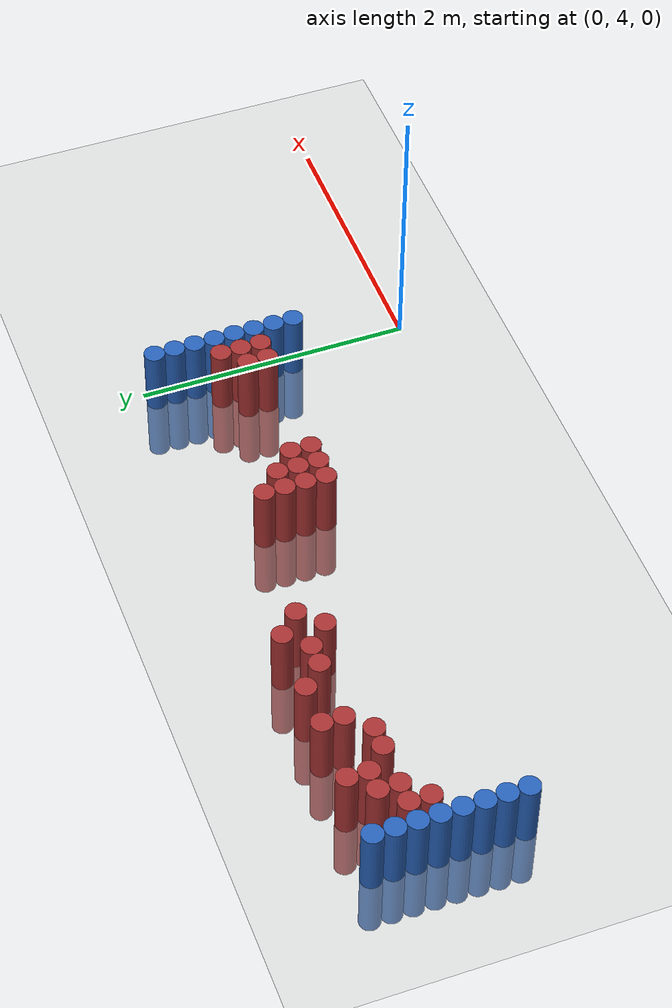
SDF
<sdf version="1.6">
 <world name="default">
  <model name="ground_plane">
   <static>1</static>
   <link name="link">
    <collision name="collision">
     <geometry><plane><normal>0 0 1</normal><size>100 100</size></plane></geometry>
     <surface><friction><ode><mu>100</mu><mu2>50</mu2></ode></friction></surface>
    </collision>
    <visual name="visual">
     <cast_shadows>0</cast_shadows>
     <geometry><plane><normal>0 0 1</normal><size>100 100</size></plane></geometry>
     <material>
      <script><uri>file://media/materials/scripts/gazebo.material</uri><name>Gazebo/Grey</name></script>
     </material>
    </visual>
   </link>
  </model>
  <model name="unit_cylinder_92">
   <static>1</static>
   <pose>-0.075000 4.875000 0.000000 0.000000 0.000000 0.000000</pose>
   <link name="link">
    <inertial>
     <mass>1</mass>
     <inertia><ixx>0.145833</ixx><ixy>0</ixy><ixz>0</ixz><iyy>0.145833</iyy><iyz>0</iyz><izz>0.125</izz></inertia>
    </inertial>
    <collision name="collision">
     <geometry><cylinder><radius>0.075000</radius><length>1</length></cylinder></geometry>
    </collision>
    <visual name="visual">
     <geometry><cylinder><radius>0.075000</radius><length>1</length></cylinder></geometry>
     <material>
      <ambient>0.152000 0.379000 0.720000 1</ambient>
      <diffuse>0.152000 0.379000 0.720000 1</diffuse>
     </material>
     <material>
      <script><name>Gazebo/Grey</name><uri>file://media/materials/scripts/gazebo.material</uri></script>
     </material>
    </visual>
   </link>
  </model>
  <model name="unit_cylinder_93">
   <static>1</static>
   <pose>-4.425000 4.875000 0.000000 0.000000 0.000000 0.000000</pose>
   <link name="link">
    <inertial>
     <mass>1</mass>
     <inertia><ixx>0.145833</ixx><ixy>0</ixy><ixz>0</ixz><iyy>0.145833</iyy><iyz>0</iyz><izz>0.125</izz></inertia>
    </inertial>
    <collision name="collision">
     <geometry><cylinder><radius>0.075000</radius><length>1</length></cylinder></geometry>
    </collision>
    <visual name="visual">
     <geometry><cylinder><radius>0.075000</radius><length>1</length></cylinder></geometry>
     <material>
      <ambient>0.152000 0.379000 0.720000 1</ambient>
      <diffuse>0.152000 0.379000 0.720000 1</diffuse>
     </material>
     <material>
      <script><name>Gazebo/Grey</name><uri>file://media/materials/scripts/gazebo.material</uri></script>
     </material>
    </visual>
   </link>
  </model>
  <model name="unit_cylinder_94">
   <static>1</static>
   <pose>-0.075000 5.025000 0.000000 0.000000 0.000000 0.000000</pose>
   <link name="link">
    <inertial>
     <mass>1</mass>
     <inertia><ixx>0.145833</ixx><ixy>0</ixy><ixz>0</ixz><iyy>0.145833</iyy><iyz>0</iyz><izz>0.125</izz></inertia>
    </inertial>
    <collision name="collision">
     <geometry><cylinder><radius>0.075000</radius><length>1</length></cylinder></geometry>
    </collision>
    <visual name="visual">
     <geometry><cylinder><radius>0.075000</radius><length>1</length></cylinder></geometry>
     <material>
      <ambient>0.152000 0.379000 0.720000 1</ambient>
      <diffuse>0.152000 0.379000 0.720000 1</diffuse>
     </material>
     <material>
      <script><name>Gazebo/Grey</name><uri>file://media/materials/scripts/gazebo.material</uri></script>
     </material>
    </visual>
   </link>
  </model>
  <model name="unit_cylinder_95">
   <static>1</static>
   <pose>-4.425000 5.025000 0.000000 0.000000 0.000000 0.000000</pose>
   <link name="link">
    <inertial>
     <mass>1</mass>
     <inertia><ixx>0.145833</ixx><ixy>0</ixy><ixz>0</ixz><iyy>0.145833</iyy><iyz>0</iyz><izz>0.125</izz></inertia>
    </inertial>
    <collision name="collision">
     <geometry><cylinder><radius>0.075000</radius><length>1</length></cylinder></geometry>
    </collision>
    <visual name="visual">
     <geometry><cylinder><radius>0.075000</radius><length>1</length></cylinder></geometry>
     <material>
      <ambient>0.152000 0.379000 0.720000 1</ambient>
      <diffuse>0.152000 0.379000 0.720000 1</diffuse>
     </material>
     <material>
      <script><name>Gazebo/Grey</name><uri>file://media/materials/scripts/gazebo.material</uri></script>
     </material>
    </visual>
   </link>
  </model>
  <model name="unit_cylinder_96">
   <static>1</static>
   <pose>-4.425000 5.175000 0.000000 0.000000 0.000000 0.000000</pose>
   <link name="link">
    <inertial>
     <mass>1</mass>
     <inertia><ixx>0.145833</ixx><ixy>0</ixy><ixz>0</ixz><iyy>0.145833</iyy><iyz>0</iyz><izz>0.125</izz></inertia>
    </inertial>
    <collision name="collision">
     <geometry><cylinder><radius>0.075000</radius><length>1</length></cylinder></geometry>
    </collision>
    <visual name="visual">
     <geometry><cylinder><radius>0.075000</radius><length>1</length></cylinder></geometry>
     <material>
      <ambient>0.152000 0.379000 0.720000 1</ambient>
      <diffuse>0.152000 0.379000 0.720000 1</diffuse>
     </material>
     <material>
      <script><name>Gazebo/Grey</name><uri>file://media/materials/scripts/gazebo.material</uri></script>
     </material>
    </visual>
   </link>
  </model>
  <model name="unit_cylinder_97">
   <static>1</static>
   <pose>-4.425000 5.325000 0.000000 0.000000 0.000000 0.000000</pose>
   <link name="link">
    <inertial>
     <mass>1</mass>
     <inertia><ixx>0.145833</ixx><ixy>0</ixy><ixz>0</ixz><iyy>0.145833</iyy><iyz>0</iyz><izz>0.125</izz></inertia>
    </inertial>
    <collision name="collision">
     <geometry><cylinder><radius>0.075000</radius><length>1</length></cylinder></geometry>
    </collision>
    <visual name="visual">
     <geometry><cylinder><radius>0.075000</radius><length>1</length></cylinder></geometry>
     <material>
      <ambient>0.152000 0.379000 0.720000 1</ambient>
      <diffuse>0.152000 0.379000 0.720000 1</diffuse>
     </material>
     <material>
      <script><name>Gazebo/Grey</name><uri>file://media/materials/scripts/gazebo.material</uri></script>
     </material>
    </visual>
   </link>
  </model>
  <model name="unit_cylinder_98">
   <static>1</static>
   <pose>-4.425000 5.475000 0.000000 0.000000 0.000000 0.000000</pose>
   <link name="link">
    <inertial>
     <mass>1</mass>
     <inertia><ixx>0.145833</ixx><ixy>0</ixy><ixz>0</ixz><iyy>0.145833</iyy><iyz>0</iyz><izz>0.125</izz></inertia>
    </inertial>
    <collision name="collision">
     <geometry><cylinder><radius>0.075000</radius><length>1</length></cylinder></geometry>
    </collision>
    <visual name="visual">
     <geometry><cylinder><radius>0.075000</radius><length>1</length></cylinder></geometry>
     <material>
      <ambient>0.152000 0.379000 0.720000 1</ambient>
      <diffuse>0.152000 0.379000 0.720000 1</diffuse>
     </material>
     <material>
      <script><name>Gazebo/Grey</name><uri>file://media/materials/scripts/gazebo.material</uri></script>
     </material>
    </visual>
   </link>
  </model>
  <model name="unit_cylinder_99">
   <static>1</static>
   <pose>-4.425000 5.625000 0.000000 0.000000 0.000000 0.000000</pose>
   <link name="link">
    <inertial>
     <mass>1</mass>
     <inertia><ixx>0.145833</ixx><ixy>0</ixy><ixz>0</ixz><iyy>0.145833</iyy><iyz>0</iyz><izz>0.125</izz></inertia>
    </inertial>
    <collision name="collision">
     <geometry><cylinder><radius>0.075000</radius><length>1</length></cylinder></geometry>
    </collision>
    <visual name="visual">
     <geometry><cylinder><radius>0.075000</radius><length>1</length></cylinder></geometry>
     <material>
      <ambient>0.152000 0.379000 0.720000 1</ambient>
      <diffuse>0.152000 0.379000 0.720000 1</diffuse>
     </material>
     <material>
      <script><name>Gazebo/Grey</name><uri>file://media/materials/scripts/gazebo.material</uri></script>
     </material>
    </visual>
   </link>
  </model>
  <model name="unit_cylinder_100">
   <static>1</static>
   <pose>-4.425000 5.775000 0.000000 0.000000 0.000000 0.000000</pose>
   <link name="link">
    <inertial>
     <mass>1</mass>
     <inertia><ixx>0.145833</ixx><ixy>0</ixy><ixz>0</ixz><iyy>0.145833</iyy><iyz>0</iyz><izz>0.125</izz></inertia>
    </inertial>
    <collision name="collision">
     <geometry><cylinder><radius>0.075000</radius><length>1</length></cylinder></geometry>
    </collision>
    <visual name="visual">
     <geometry><cylinder><radius>0.075000</radius><length>1</length></cylinder></geometry>
     <material>
      <ambient>0.152000 0.379000 0.720000 1</ambient>
      <diffuse>0.152000 0.379000 0.720000 1</diffuse>
     </material>
     <material>
      <script><name>Gazebo/Grey</name><uri>file://media/materials/scripts/gazebo.material</uri></script>
     </material>
    </visual>
   </link>
  </model>
  <model name="unit_cylinder_101">
   <static>1</static>
   <pose>-4.425000 5.925000 0.000000 0.000000 0.000000 0.000000</pose>
   <link name="link">
    <inertial>
     <mass>1</mass>
     <inertia><ixx>0.145833</ixx><ixy>0</ixy><ixz>0</ixz><iyy>0.145833</iyy><iyz>0</iyz><izz>0.125</izz></inertia>
    </inertial>
    <collision name="collision">
     <geometry><cylinder><radius>0.075000</radius><length>1</length></cylinder></geometry>
    </collision>
    <visual name="visual">
     <geometry><cylinder><radius>0.075000</radius><length>1</length></cylinder></geometry>
     <material>
      <ambient>0.152000 0.379000 0.720000 1</ambient>
      <diffuse>0.152000 0.379000 0.720000 1</diffuse>
     </material>
     <material>
      <script><name>Gazebo/Grey</name><uri>file://media/materials/scripts/gazebo.material</uri></script>
     </material>
    </visual>
   </link>
  </model>
  <model name="unit_cylinder_126">
   <static>1</static>
   <pose>-4.275000 5.475000 0.000000 0.000000 0.000000 0.000000</pose>
   <link name="link">
    <inertial>
     <mass>1</mass>
     <inertia><ixx>0.145833</ixx><ixy>0</ixy><ixz>0</ixz><iyy>0.145833</iyy><iyz>0</iyz><izz>0.125</izz></inertia>
    </inertial>
    <collision name="collision">
     <geometry><cylinder><radius>0.075000</radius><length>1</length></cylinder></geometry>
    </collision>
    <visual name="visual">
     <geometry><cylinder><radius>0.075000</radius><length>1</length></cylinder></geometry>
     <material>
      <ambient>0.648000 0.192000 0.192000 1</ambient>
      <diffuse>0.648000 0.192000 0.192000 1</diffuse>
     </material>
     <material>
      <script><name>Gazebo/Grey</name><uri>file://media/materials/scripts/gazebo.material</uri></script>
     </material>
    </visual>
   </link>
  </model>
  <model name="unit_cylinder_127">
   <static>1</static>
   <pose>-4.275000 5.625000 0.000000 0.000000 0.000000 0.000000</pose>
   <link name="link">
    <inertial>
     <mass>1</mass>
     <inertia><ixx>0.145833</ixx><ixy>0</ixy><ixz>0</ixz><iyy>0.145833</iyy><iyz>0</iyz><izz>0.125</izz></inertia>
    </inertial>
    <collision name="collision">
     <geometry><cylinder><radius>0.075000</radius><length>1</length></cylinder></geometry>
    </collision>
    <visual name="visual">
     <geometry><cylinder><radius>0.075000</radius><length>1</length></cylinder></geometry>
     <material>
      <ambient>0.648000 0.192000 0.192000 1</ambient>
      <diffuse>0.648000 0.192000 0.192000 1</diffuse>
     </material>
     <material>
      <script><name>Gazebo/Grey</name><uri>file://media/materials/scripts/gazebo.material</uri></script>
     </material>
    </visual>
   </link>
  </model>
  <model name="unit_cylinder_137">
   <static>1</static>
   <pose>-4.125000 5.625000 0.000000 0.000000 0.000000 0.000000</pose>
   <link name="link">
    <inertial>
     <mass>1</mass>
     <inertia><ixx>0.145833</ixx><ixy>0</ixy><ixz>0</ixz><iyy>0.145833</iyy><iyz>0</iyz><izz>0.125</izz></inertia>
    </inertial>
    <collision name="collision">
     <geometry><cylinder><radius>0.075000</radius><length>1</length></cylinder></geometry>
    </collision>
    <visual name="visual">
     <geometry><cylinder><radius>0.075000</radius><length>1</length></cylinder></geometry>
     <material>
      <ambient>0.648000 0.192000 0.192000 1</ambient>
      <diffuse>0.648000 0.192000 0.192000 1</diffuse>
     </material>
     <material>
      <script><name>Gazebo/Grey</name><uri>file://media/materials/scripts/gazebo.material</uri></script>
     </material>
    </visual>
   </link>
  </model>
  <model name="unit_cylinder_138">
   <static>1</static>
   <pose>-4.125000 5.775000 0.000000 0.000000 0.000000 0.000000</pose>
   <link name="link">
    <inertial>
     <mass>1</mass>
     <inertia><ixx>0.145833</ixx><ixy>0</ixy><ixz>0</ixz><iyy>0.145833</iyy><iyz>0</iyz><izz>0.125</izz></inertia>
    </inertial>
    <collision name="collision">
     <geometry><cylinder><radius>0.075000</radius><length>1</length></cylinder></geometry>
    </collision>
    <visual name="visual">
     <geometry><cylinder><radius>0.075000</radius><length>1</length></cylinder></geometry>
     <material>
      <ambient>0.648000 0.192000 0.192000 1</ambient>
      <diffuse>0.648000 0.192000 0.192000 1</diffuse>
     </material>
     <material>
      <script><name>Gazebo/Grey</name><uri>file://media/materials/scripts/gazebo.material</uri></script>
     </material>
    </visual>
   </link>
  </model>
  <model name="unit_cylinder_143">
   <static>1</static>
   <pose>-3.975000 5.775000 0.000000 0.000000 0.000000 0.000000</pose>
   <link name="link">
    <inertial>
     <mass>1</mass>
     <inertia><ixx>0.145833</ixx><ixy>0</ixy><ixz>0</ixz><iyy>0.145833</iyy><iyz>0</iyz><izz>0.125</izz></inertia>
    </inertial>
    <collision name="collision">
     <geometry><cylinder><radius>0.075000</radius><length>1</length></cylinder></geometry>
    </collision>
    <visual name="visual">
     <geometry><cylinder><radius>0.075000</radius><length>1</length></cylinder></geometry>
     <material>
      <ambient>0.648000 0.192000 0.192000 1</ambient>
      <diffuse>0.648000 0.192000 0.192000 1</diffuse>
     </material>
     <material>
      <script><name>Gazebo/Grey</name><uri>file://media/materials/scripts/gazebo.material</uri></script>
     </material>
    </visual>
   </link>
  </model>
  <model name="unit_cylinder_144">
   <static>1</static>
   <pose>-3.975000 5.925000 0.000000 0.000000 0.000000 0.000000</pose>
   <link name="link">
    <inertial>
     <mass>1</mass>
     <inertia><ixx>0.145833</ixx><ixy>0</ixy><ixz>0</ixz><iyy>0.145833</iyy><iyz>0</iyz><izz>0.125</izz></inertia>
    </inertial>
    <collision name="collision">
     <geometry><cylinder><radius>0.075000</radius><length>1</length></cylinder></geometry>
    </collision>
    <visual name="visual">
     <geometry><cylinder><radius>0.075000</radius><length>1</length></cylinder></geometry>
     <material>
      <ambient>0.648000 0.192000 0.192000 1</ambient>
      <diffuse>0.648000 0.192000 0.192000 1</diffuse>
     </material>
     <material>
      <script><name>Gazebo/Grey</name><uri>file://media/materials/scripts/gazebo.material</uri></script>
     </material>
    </visual>
   </link>
  </model>
  <model name="unit_cylinder_149">
   <static>1</static>
   <pose>-3.825000 5.625000 0.000000 0.000000 0.000000 0.000000</pose>
   <link name="link">
    <inertial>
     <mass>1</mass>
     <inertia><ixx>0.145833</ixx><ixy>0</ixy><ixz>0</ixz><iyy>0.145833</iyy><iyz>0</iyz><izz>0.125</izz></inertia>
    </inertial>
    <collision name="collision">
     <geometry><cylinder><radius>0.075000</radius><length>1</length></cylinder></geometry>
    </collision>
    <visual name="visual">
     <geometry><cylinder><radius>0.075000</radius><length>1</length></cylinder></geometry>
     <material>
      <ambient>0.648000 0.192000 0.192000 1</ambient>
      <diffuse>0.648000 0.192000 0.192000 1</diffuse>
     </material>
     <material>
      <script><name>Gazebo/Grey</name><uri>file://media/materials/scripts/gazebo.material</uri></script>
     </material>
    </visual>
   </link>
  </model>
  <model name="unit_cylinder_151">
   <static>1</static>
   <pose>-3.675000 5.625000 0.000000 0.000000 0.000000 0.000000</pose>
   <link name="link">
    <inertial>
     <mass>1</mass>
     <inertia><ixx>0.145833</ixx><ixy>0</ixy><ixz>0</ixz><iyy>0.145833</iyy><iyz>0</iyz><izz>0.125</izz></inertia>
    </inertial>
    <collision name="collision">
     <geometry><cylinder><radius>0.075000</radius><length>1</length></cylinder></geometry>
    </collision>
    <visual name="visual">
     <geometry><cylinder><radius>0.075000</radius><length>1</length></cylinder></geometry>
     <material>
      <ambient>0.648000 0.192000 0.192000 1</ambient>
      <diffuse>0.648000 0.192000 0.192000 1</diffuse>
     </material>
     <material>
      <script><name>Gazebo/Grey</name><uri>file://media/materials/scripts/gazebo.material</uri></script>
     </material>
    </visual>
   </link>
  </model>
  <model name="unit_cylinder_155">
   <static>1</static>
   <pose>-3.525000 5.775000 0.000000 0.000000 0.000000 0.000000</pose>
   <link name="link">
    <inertial>
     <mass>1</mass>
     <inertia><ixx>0.145833</ixx><ixy>0</ixy><ixz>0</ixz><iyy>0.145833</iyy><iyz>0</iyz><izz>0.125</izz></inertia>
    </inertial>
    <collision name="collision">
     <geometry><cylinder><radius>0.075000</radius><length>1</length></cylinder></geometry>
    </collision>
    <visual name="visual">
     <geometry><cylinder><radius>0.075000</radius><length>1</length></cylinder></geometry>
     <material>
      <ambient>0.648000 0.192000 0.192000 1</ambient>
      <diffuse>0.648000 0.192000 0.192000 1</diffuse>
     </material>
     <material>
      <script><name>Gazebo/Grey</name><uri>file://media/materials/scripts/gazebo.material</uri></script>
     </material>
    </visual>
   </link>
  </model>
  <model name="unit_cylinder_156">
   <static>1</static>
   <pose>-3.525000 5.925000 0.000000 0.000000 0.000000 0.000000</pose>
   <link name="link">
    <inertial>
     <mass>1</mass>
     <inertia><ixx>0.145833</ixx><ixy>0</ixy><ixz>0</ixz><iyy>0.145833</iyy><iyz>0</iyz><izz>0.125</izz></inertia>
    </inertial>
    <collision name="collision">
     <geometry><cylinder><radius>0.075000</radius><length>1</length></cylinder></geometry>
    </collision>
    <visual name="visual">
     <geometry><cylinder><radius>0.075000</radius><length>1</length></cylinder></geometry>
     <material>
      <ambient>0.648000 0.192000 0.192000 1</ambient>
      <diffuse>0.648000 0.192000 0.192000 1</diffuse>
     </material>
     <material>
      <script><name>Gazebo/Grey</name><uri>file://media/materials/scripts/gazebo.material</uri></script>
     </material>
    </visual>
   </link>
  </model>
  <model name="unit_cylinder_164">
   <static>1</static>
   <pose>-3.225000 5.925000 0.000000 0.000000 0.000000 0.000000</pose>
   <link name="link">
    <inertial>
     <mass>1</mass>
     <inertia><ixx>0.145833</ixx><ixy>0</ixy><ixz>0</ixz><iyy>0.145833</iyy><iyz>0</iyz><izz>0.125</izz></inertia>
    </inertial>
    <collision name="collision">
     <geometry><cylinder><radius>0.075000</radius><length>1</length></cylinder></geometry>
    </collision>
    <visual name="visual">
     <geometry><cylinder><radius>0.075000</radius><length>1</length></cylinder></geometry>
     <material>
      <ambient>0.648000 0.192000 0.192000 1</ambient>
      <diffuse>0.648000 0.192000 0.192000 1</diffuse>
     </material>
     <material>
      <script><name>Gazebo/Grey</name><uri>file://media/materials/scripts/gazebo.material</uri></script>
     </material>
    </visual>
   </link>
  </model>
  <model name="unit_cylinder_166">
   <static>1</static>
   <pose>-3.075000 5.775000 0.000000 0.000000 0.000000 0.000000</pose>
   <link name="link">
    <inertial>
     <mass>1</mass>
     <inertia><ixx>0.145833</ixx><ixy>0</ixy><ixz>0</ixz><iyy>0.145833</iyy><iyz>0</iyz><izz>0.125</izz></inertia>
    </inertial>
    <collision name="collision">
     <geometry><cylinder><radius>0.075000</radius><length>1</length></cylinder></geometry>
    </collision>
    <visual name="visual">
     <geometry><cylinder><radius>0.075000</radius><length>1</length></cylinder></geometry>
     <material>
      <ambient>0.648000 0.192000 0.192000 1</ambient>
      <diffuse>0.648000 0.192000 0.192000 1</diffuse>
     </material>
     <material>
      <script><name>Gazebo/Grey</name><uri>file://media/materials/scripts/gazebo.material</uri></script>
     </material>
    </visual>
   </link>
  </model>
  <model name="unit_cylinder_167">
   <static>1</static>
   <pose>-2.925000 5.775000 0.000000 0.000000 0.000000 0.000000</pose>
   <link name="link">
    <inertial>
     <mass>1</mass>
     <inertia><ixx>0.145833</ixx><ixy>0</ixy><ixz>0</ixz><iyy>0.145833</iyy><iyz>0</iyz><izz>0.125</izz></inertia>
    </inertial>
    <collision name="collision">
     <geometry><cylinder><radius>0.075000</radius><length>1</length></cylinder></geometry>
    </collision>
    <visual name="visual">
     <geometry><cylinder><radius>0.075000</radius><length>1</length></cylinder></geometry>
     <material>
      <ambient>0.648000 0.192000 0.192000 1</ambient>
      <diffuse>0.648000 0.192000 0.192000 1</diffuse>
     </material>
     <material>
      <script><name>Gazebo/Grey</name><uri>file://media/materials/scripts/gazebo.material</uri></script>
     </material>
    </visual>
   </link>
  </model>
  <model name="unit_cylinder_168">
   <static>1</static>
   <pose>-2.775000 5.625000 0.000000 0.000000 0.000000 0.000000</pose>
   <link name="link">
    <inertial>
     <mass>1</mass>
     <inertia><ixx>0.145833</ixx><ixy>0</ixy><ixz>0</ixz><iyy>0.145833</iyy><iyz>0</iyz><izz>0.125</izz></inertia>
    </inertial>
    <collision name="collision">
     <geometry><cylinder><radius>0.075000</radius><length>1</length></cylinder></geometry>
    </collision>
    <visual name="visual">
     <geometry><cylinder><radius>0.075000</radius><length>1</length></cylinder></geometry>
     <material>
      <ambient>0.648000 0.192000 0.192000 1</ambient>
      <diffuse>0.648000 0.192000 0.192000 1</diffuse>
     </material>
     <material>
      <script><name>Gazebo/Grey</name><uri>file://media/materials/scripts/gazebo.material</uri></script>
     </material>
    </visual>
   </link>
  </model>
  <model name="unit_cylinder_169">
   <static>1</static>
   <pose>-2.775000 5.925000 0.000000 0.000000 0.000000 0.000000</pose>
   <link name="link">
    <inertial>
     <mass>1</mass>
     <inertia><ixx>0.145833</ixx><ixy>0</ixy><ixz>0</ixz><iyy>0.145833</iyy><iyz>0</iyz><izz>0.125</izz></inertia>
    </inertial>
    <collision name="collision">
     <geometry><cylinder><radius>0.075000</radius><length>1</length></cylinder></geometry>
    </collision>
    <visual name="visual">
     <geometry><cylinder><radius>0.075000</radius><length>1</length></cylinder></geometry>
     <material>
      <ambient>0.648000 0.192000 0.192000 1</ambient>
      <diffuse>0.648000 0.192000 0.192000 1</diffuse>
     </material>
     <material>
      <script><name>Gazebo/Grey</name><uri>file://media/materials/scripts/gazebo.material</uri></script>
     </material>
    </visual>
   </link>
  </model>
  <model name="unit_cylinder_170">
   <static>1</static>
   <pose>-2.625000 5.775000 0.000000 0.000000 0.000000 0.000000</pose>
   <link name="link">
    <inertial>
     <mass>1</mass>
     <inertia><ixx>0.145833</ixx><ixy>0</ixy><ixz>0</ixz><iyy>0.145833</iyy><iyz>0</iyz><izz>0.125</izz></inertia>
    </inertial>
    <collision name="collision">
     <geometry><cylinder><radius>0.075000</radius><length>1</length></cylinder></geometry>
    </collision>
    <visual name="visual">
     <geometry><cylinder><radius>0.075000</radius><length>1</length></cylinder></geometry>
     <material>
      <ambient>0.648000 0.192000 0.192000 1</ambient>
      <diffuse>0.648000 0.192000 0.192000 1</diffuse>
     </material>
     <material>
      <script><name>Gazebo/Grey</name><uri>file://media/materials/scripts/gazebo.material</uri></script>
     </material>
    </visual>
   </link>
  </model>
  <model name="unit_cylinder_178">
   <static>1</static>
   <pose>-1.575000 5.175000 0.000000 0.000000 0.000000 0.000000</pose>
   <link name="link">
    <inertial>
     <mass>1</mass>
     <inertia><ixx>0.145833</ixx><ixy>0</ixy><ixz>0</ixz><iyy>0.145833</iyy><iyz>0</iyz><izz>0.125</izz></inertia>
    </inertial>
    <collision name="collision">
     <geometry><cylinder><radius>0.075000</radius><length>1</length></cylinder></geometry>
    </collision>
    <visual name="visual">
     <geometry><cylinder><radius>0.075000</radius><length>1</length></cylinder></geometry>
     <material>
      <ambient>0.648000 0.192000 0.192000 1</ambient>
      <diffuse>0.648000 0.192000 0.192000 1</diffuse>
     </material>
     <material>
      <script><name>Gazebo/Grey</name><uri>file://media/materials/scripts/gazebo.material</uri></script>
     </material>
    </visual>
   </link>
  </model>
  <model name="unit_cylinder_179">
   <static>1</static>
   <pose>-1.575000 5.325000 0.000000 0.000000 0.000000 0.000000</pose>
   <link name="link">
    <inertial>
     <mass>1</mass>
     <inertia><ixx>0.145833</ixx><ixy>0</ixy><ixz>0</ixz><iyy>0.145833</iyy><iyz>0</iyz><izz>0.125</izz></inertia>
    </inertial>
    <collision name="collision">
     <geometry><cylinder><radius>0.075000</radius><length>1</length></cylinder></geometry>
    </collision>
    <visual name="visual">
     <geometry><cylinder><radius>0.075000</radius><length>1</length></cylinder></geometry>
     <material>
      <ambient>0.648000 0.192000 0.192000 1</ambient>
      <diffuse>0.648000 0.192000 0.192000 1</diffuse>
     </material>
     <material>
      <script><name>Gazebo/Grey</name><uri>file://media/materials/scripts/gazebo.material</uri></script>
     </material>
    </visual>
   </link>
  </model>
  <model name="unit_cylinder_180">
   <static>1</static>
   <pose>-1.575000 5.475000 0.000000 0.000000 0.000000 0.000000</pose>
   <link name="link">
    <inertial>
     <mass>1</mass>
     <inertia><ixx>0.145833</ixx><ixy>0</ixy><ixz>0</ixz><iyy>0.145833</iyy><iyz>0</iyz><izz>0.125</izz></inertia>
    </inertial>
    <collision name="collision">
     <geometry><cylinder><radius>0.075000</radius><length>1</length></cylinder></geometry>
    </collision>
    <visual name="visual">
     <geometry><cylinder><radius>0.075000</radius><length>1</length></cylinder></geometry>
     <material>
      <ambient>0.648000 0.192000 0.192000 1</ambient>
      <diffuse>0.648000 0.192000 0.192000 1</diffuse>
     </material>
     <material>
      <script><name>Gazebo/Grey</name><uri>file://media/materials/scripts/gazebo.material</uri></script>
     </material>
    </visual>
   </link>
  </model>
  <model name="unit_cylinder_181">
   <static>1</static>
   <pose>-1.575000 5.625000 0.000000 0.000000 0.000000 0.000000</pose>
   <link name="link">
    <inertial>
     <mass>1</mass>
     <inertia><ixx>0.145833</ixx><ixy>0</ixy><ixz>0</ixz><iyy>0.145833</iyy><iyz>0</iyz><izz>0.125</izz></inertia>
    </inertial>
    <collision name="collision">
     <geometry><cylinder><radius>0.075000</radius><length>1</length></cylinder></geometry>
    </collision>
    <visual name="visual">
     <geometry><cylinder><radius>0.075000</radius><length>1</length></cylinder></geometry>
     <material>
      <ambient>0.648000 0.192000 0.192000 1</ambient>
      <diffuse>0.648000 0.192000 0.192000 1</diffuse>
     </material>
     <material>
      <script><name>Gazebo/Grey</name><uri>file://media/materials/scripts/gazebo.material</uri></script>
     </material>
    </visual>
   </link>
  </model>
  <model name="unit_cylinder_185">
   <static>1</static>
   <pose>-1.425000 5.175000 0.000000 0.000000 0.000000 0.000000</pose>
   <link name="link">
    <inertial>
     <mass>1</mass>
     <inertia><ixx>0.145833</ixx><ixy>0</ixy><ixz>0</ixz><iyy>0.145833</iyy><iyz>0</iyz><izz>0.125</izz></inertia>
    </inertial>
    <collision name="collision">
     <geometry><cylinder><radius>0.075000</radius><length>1</length></cylinder></geometry>
    </collision>
    <visual name="visual">
     <geometry><cylinder><radius>0.075000</radius><length>1</length></cylinder></geometry>
     <material>
      <ambient>0.648000 0.192000 0.192000 1</ambient>
      <diffuse>0.648000 0.192000 0.192000 1</diffuse>
     </material>
     <material>
      <script><name>Gazebo/Grey</name><uri>file://media/materials/scripts/gazebo.material</uri></script>
     </material>
    </visual>
   </link>
  </model>
  <model name="unit_cylinder_186">
   <static>1</static>
   <pose>-1.425000 5.325000 0.000000 0.000000 0.000000 0.000000</pose>
   <link name="link">
    <inertial>
     <mass>1</mass>
     <inertia><ixx>0.145833</ixx><ixy>0</ixy><ixz>0</ixz><iyy>0.145833</iyy><iyz>0</iyz><izz>0.125</izz></inertia>
    </inertial>
    <collision name="collision">
     <geometry><cylinder><radius>0.075000</radius><length>1</length></cylinder></geometry>
    </collision>
    <visual name="visual">
     <geometry><cylinder><radius>0.075000</radius><length>1</length></cylinder></geometry>
     <material>
      <ambient>0.648000 0.192000 0.192000 1</ambient>
      <diffuse>0.648000 0.192000 0.192000 1</diffuse>
     </material>
     <material>
      <script><name>Gazebo/Grey</name><uri>file://media/materials/scripts/gazebo.material</uri></script>
     </material>
    </visual>
   </link>
  </model>
  <model name="unit_cylinder_187">
   <static>1</static>
   <pose>-1.425000 5.475000 0.000000 0.000000 0.000000 0.000000</pose>
   <link name="link">
    <inertial>
     <mass>1</mass>
     <inertia><ixx>0.145833</ixx><ixy>0</ixy><ixz>0</ixz><iyy>0.145833</iyy><iyz>0</iyz><izz>0.125</izz></inertia>
    </inertial>
    <collision name="collision">
     <geometry><cylinder><radius>0.075000</radius><length>1</length></cylinder></geometry>
    </collision>
    <visual name="visual">
     <geometry><cylinder><radius>0.075000</radius><length>1</length></cylinder></geometry>
     <material>
      <ambient>0.648000 0.192000 0.192000 1</ambient>
      <diffuse>0.648000 0.192000 0.192000 1</diffuse>
     </material>
     <material>
      <script><name>Gazebo/Grey</name><uri>file://media/materials/scripts/gazebo.material</uri></script>
     </material>
    </visual>
   </link>
  </model>
  <model name="unit_cylinder_191">
   <static>1</static>
   <pose>-1.275000 5.175000 0.000000 0.000000 0.000000 0.000000</pose>
   <link name="link">
    <inertial>
     <mass>1</mass>
     <inertia><ixx>0.145833</ixx><ixy>0</ixy><ixz>0</ixz><iyy>0.145833</iyy><iyz>0</iyz><izz>0.125</izz></inertia>
    </inertial>
    <collision name="collision">
     <geometry><cylinder><radius>0.075000</radius><length>1</length></cylinder></geometry>
    </collision>
    <visual name="visual">
     <geometry><cylinder><radius>0.075000</radius><length>1</length></cylinder></geometry>
     <material>
      <ambient>0.648000 0.192000 0.192000 1</ambient>
      <diffuse>0.648000 0.192000 0.192000 1</diffuse>
     </material>
     <material>
      <script><name>Gazebo/Grey</name><uri>file://media/materials/scripts/gazebo.material</uri></script>
     </material>
    </visual>
   </link>
  </model>
  <model name="unit_cylinder_192">
   <static>1</static>
   <pose>-1.275000 5.325000 0.000000 0.000000 0.000000 0.000000</pose>
   <link name="link">
    <inertial>
     <mass>1</mass>
     <inertia><ixx>0.145833</ixx><ixy>0</ixy><ixz>0</ixz><iyy>0.145833</iyy><iyz>0</iyz><izz>0.125</izz></inertia>
    </inertial>
    <collision name="collision">
     <geometry><cylinder><radius>0.075000</radius><length>1</length></cylinder></geometry>
    </collision>
    <visual name="visual">
     <geometry><cylinder><radius>0.075000</radius><length>1</length></cylinder></geometry>
     <material>
      <ambient>0.648000 0.192000 0.192000 1</ambient>
      <diffuse>0.648000 0.192000 0.192000 1</diffuse>
     </material>
     <material>
      <script><name>Gazebo/Grey</name><uri>file://media/materials/scripts/gazebo.material</uri></script>
     </material>
    </visual>
   </link>
  </model>
  <model name="unit_cylinder_219">
   <static>1</static>
   <pose>-0.375000 5.175000 0.000000 0.000000 0.000000 0.000000</pose>
   <link name="link">
    <inertial>
     <mass>1</mass>
     <inertia><ixx>0.145833</ixx><ixy>0</ixy><ixz>0</ixz><iyy>0.145833</iyy><iyz>0</iyz><izz>0.125</izz></inertia>
    </inertial>
    <collision name="collision">
     <geometry><cylinder><radius>0.075000</radius><length>1</length></cylinder></geometry>
    </collision>
    <visual name="visual">
     <geometry><cylinder><radius>0.075000</radius><length>1</length></cylinder></geometry>
     <material>
      <ambient>0.648000 0.192000 0.192000 1</ambient>
      <diffuse>0.648000 0.192000 0.192000 1</diffuse>
     </material>
     <material>
      <script><name>Gazebo/Grey</name><uri>file://media/materials/scripts/gazebo.material</uri></script>
     </material>
    </visual>
   </link>
  </model>
  <model name="unit_cylinder_220">
   <static>1</static>
   <pose>-0.375000 5.325000 0.000000 0.000000 0.000000 0.000000</pose>
   <link name="link">
    <inertial>
     <mass>1</mass>
     <inertia><ixx>0.145833</ixx><ixy>0</ixy><ixz>0</ixz><iyy>0.145833</iyy><iyz>0</iyz><izz>0.125</izz></inertia>
    </inertial>
    <collision name="collision">
     <geometry><cylinder><radius>0.075000</radius><length>1</length></cylinder></geometry>
    </collision>
    <visual name="visual">
     <geometry><cylinder><radius>0.075000</radius><length>1</length></cylinder></geometry>
     <material>
      <ambient>0.648000 0.192000 0.192000 1</ambient>
      <diffuse>0.648000 0.192000 0.192000 1</diffuse>
     </material>
     <material>
      <script><name>Gazebo/Grey</name><uri>file://media/materials/scripts/gazebo.material</uri></script>
     </material>
    </visual>
   </link>
  </model>
  <model name="unit_cylinder_228">
   <static>1</static>
   <pose>-0.225000 5.175000 0.000000 0.000000 0.000000 0.000000</pose>
   <link name="link">
    <inertial>
     <mass>1</mass>
     <inertia><ixx>0.145833</ixx><ixy>0</ixy><ixz>0</ixz><iyy>0.145833</iyy><iyz>0</iyz><izz>0.125</izz></inertia>
    </inertial>
    <collision name="collision">
     <geometry><cylinder><radius>0.075000</radius><length>1</length></cylinder></geometry>
    </collision>
    <visual name="visual">
     <geometry><cylinder><radius>0.075000</radius><length>1</length></cylinder></geometry>
     <material>
      <ambient>0.648000 0.192000 0.192000 1</ambient>
      <diffuse>0.648000 0.192000 0.192000 1</diffuse>
     </material>
     <material>
      <script><name>Gazebo/Grey</name><uri>file://media/materials/scripts/gazebo.material</uri></script>
     </material>
    </visual>
   </link>
  </model>
  <model name="unit_cylinder_229">
   <static>1</static>
   <pose>-0.225000 5.325000 0.000000 0.000000 0.000000 0.000000</pose>
   <link name="link">
    <inertial>
     <mass>1</mass>
     <inertia><ixx>0.145833</ixx><ixy>0</ixy><ixz>0</ixz><iyy>0.145833</iyy><iyz>0</iyz><izz>0.125</izz></inertia>
    </inertial>
    <collision name="collision">
     <geometry><cylinder><radius>0.075000</radius><length>1</length></cylinder></geometry>
    </collision>
    <visual name="visual">
     <geometry><cylinder><radius>0.075000</radius><length>1</length></cylinder></geometry>
     <material>
      <ambient>0.648000 0.192000 0.192000 1</ambient>
      <diffuse>0.648000 0.192000 0.192000 1</diffuse>
     </material>
     <material>
      <script><name>Gazebo/Grey</name><uri>file://media/materials/scripts/gazebo.material</uri></script>
     </material>
    </visual>
   </link>
  </model>
  <model name="unit_cylinder_230">
   <static>1</static>
   <pose>-0.225000 5.475000 0.000000 0.000000 0.000000 0.000000</pose>
   <link name="link">
    <inertial>
     <mass>1</mass>
     <inertia><ixx>0.145833</ixx><ixy>0</ixy><ixz>0</ixz><iyy>0.145833</iyy><iyz>0</iyz><izz>0.125</izz></inertia>
    </inertial>
    <collision name="collision">
     <geometry><cylinder><radius>0.075000</radius><length>1</length></cylinder></geometry>
    </collision>
    <visual name="visual">
     <geometry><cylinder><radius>0.075000</radius><length>1</length></cylinder></geometry>
     <material>
      <ambient>0.648000 0.192000 0.192000 1</ambient>
      <diffuse>0.648000 0.192000 0.192000 1</diffuse>
     </material>
     <material>
      <script><name>Gazebo/Grey</name><uri>file://media/materials/scripts/gazebo.material</uri></script>
     </material>
    </visual>
   </link>
  </model>
  <model name="unit_cylinder_245">
   <static>1</static>
   <pose>-0.075000 5.175000 0.000000 0.000000 0.000000 0.000000</pose>
   <link name="link">
    <inertial>
     <mass>1</mass>
     <inertia><ixx>0.145833</ixx><ixy>0</ixy><ixz>0</ixz><iyy>0.145833</iyy><iyz>0</iyz><izz>0.125</izz></inertia>
    </inertial>
    <collision name="collision">
     <geometry><cylinder><radius>0.075000</radius><length>1</length></cylinder></geometry>
    </collision>
    <visual name="visual">
     <geometry><cylinder><radius>0.075000</radius><length>1</length></cylinder></geometry>
     <material>
      <ambient>0.152000 0.379000 0.720000 1</ambient>
      <diffuse>0.152000 0.379000 0.720000 1</diffuse>
     </material>
     <material>
      <script><name>Gazebo/Grey</name><uri>file://media/materials/scripts/gazebo.material</uri></script>
     </material>
    </visual>
   </link>
  </model>
  <model name="unit_cylinder_246">
   <static>1</static>
   <pose>-0.075000 5.325000 0.000000 0.000000 0.000000 0.000000</pose>
   <link name="link">
    <inertial>
     <mass>1</mass>
     <inertia><ixx>0.145833</ixx><ixy>0</ixy><ixz>0</ixz><iyy>0.145833</iyy><iyz>0</iyz><izz>0.125</izz></inertia>
    </inertial>
    <collision name="collision">
     <geometry><cylinder><radius>0.075000</radius><length>1</length></cylinder></geometry>
    </collision>
    <visual name="visual">
     <geometry><cylinder><radius>0.075000</radius><length>1</length></cylinder></geometry>
     <material>
      <ambient>0.152000 0.379000 0.720000 1</ambient>
      <diffuse>0.152000 0.379000 0.720000 1</diffuse>
     </material>
     <material>
      <script><name>Gazebo/Grey</name><uri>file://media/materials/scripts/gazebo.material</uri></script>
     </material>
    </visual>
   </link>
  </model>
  <model name="unit_cylinder_247">
   <static>1</static>
   <pose>-0.075000 5.475000 0.000000 0.000000 0.000000 0.000000</pose>
   <link name="link">
    <inertial>
     <mass>1</mass>
     <inertia><ixx>0.145833</ixx><ixy>0</ixy><ixz>0</ixz><iyy>0.145833</iyy><iyz>0</iyz><izz>0.125</izz></inertia>
    </inertial>
    <collision name="collision">
     <geometry><cylinder><radius>0.075000</radius><length>1</length></cylinder></geometry>
    </collision>
    <visual name="visual">
     <geometry><cylinder><radius>0.075000</radius><length>1</length></cylinder></geometry>
     <material>
      <ambient>0.152000 0.379000 0.720000 1</ambient>
      <diffuse>0.152000 0.379000 0.720000 1</diffuse>
     </material>
     <material>
      <script><name>Gazebo/Grey</name><uri>file://media/materials/scripts/gazebo.material</uri></script>
     </material>
    </visual>
   </link>
  </model>
  <model name="unit_cylinder_248">
   <static>1</static>
   <pose>-0.075000 5.625000 0.000000 0.000000 0.000000 0.000000</pose>
   <link name="link">
    <inertial>
     <mass>1</mass>
     <inertia><ixx>0.145833</ixx><ixy>0</ixy><ixz>0</ixz><iyy>0.145833</iyy><iyz>0</iyz><izz>0.125</izz></inertia>
    </inertial>
    <collision name="collision">
     <geometry><cylinder><radius>0.075000</radius><length>1</length></cylinder></geometry>
    </collision>
    <visual name="visual">
     <geometry><cylinder><radius>0.075000</radius><length>1</length></cylinder></geometry>
     <material>
      <ambient>0.152000 0.379000 0.720000 1</ambient>
      <diffuse>0.152000 0.379000 0.720000 1</diffuse>
     </material>
     <material>
      <script><name>Gazebo/Grey</name><uri>file://media/materials/scripts/gazebo.material</uri></script>
     </material>
    </visual>
   </link>
  </model>
  <model name="unit_cylinder_249">
   <static>1</static>
   <pose>-0.075000 5.775000 0.000000 0.000000 0.000000 0.000000</pose>
   <link name="link">
    <inertial>
     <mass>1</mass>
     <inertia><ixx>0.145833</ixx><ixy>0</ixy><ixz>0</ixz><iyy>0.145833</iyy><iyz>0</iyz><izz>0.125</izz></inertia>
    </inertial>
    <collision name="collision">
     <geometry><cylinder><radius>0.075000</radius><length>1</length></cylinder></geometry>
    </collision>
    <visual name="visual">
     <geometry><cylinder><radius>0.075000</radius><length>1</length></cylinder></geometry>
     <material>
      <ambient>0.152000 0.379000 0.720000 1</ambient>
      <diffuse>0.152000 0.379000 0.720000 1</diffuse>
     </material>
     <material>
      <script><name>Gazebo/Grey</name><uri>file://media/materials/scripts/gazebo.material</uri></script>
     </material>
    </visual>
   </link>
  </model>
  <model name="unit_cylinder_250">
   <static>1</static>
   <pose>-0.075000 5.925000 0.000000 0.000000 0.000000 0.000000</pose>
   <link name="link">
    <inertial>
     <mass>1</mass>
     <inertia><ixx>0.145833</ixx><ixy>0</ixy><ixz>0</ixz><iyy>0.145833</iyy><iyz>0</iyz><izz>0.125</izz></inertia>
    </inertial>
    <collision name="collision">
     <geometry><cylinder><radius>0.075000</radius><length>1</length></cylinder></geometry>
    </collision>
    <visual name="visual">
     <geometry><cylinder><radius>0.075000</radius><length>1</length></cylinder></geometry>
     <material>
      <ambient>0.152000 0.379000 0.720000 1</ambient>
      <diffuse>0.152000 0.379000 0.720000 1</diffuse>
     </material>
     <material>
      <script><name>Gazebo/Grey</name><uri>file://media/materials/scripts/gazebo.material</uri></script>
     </material>
    </visual>
   </link>
  </model>
 </world>
</sdf>
